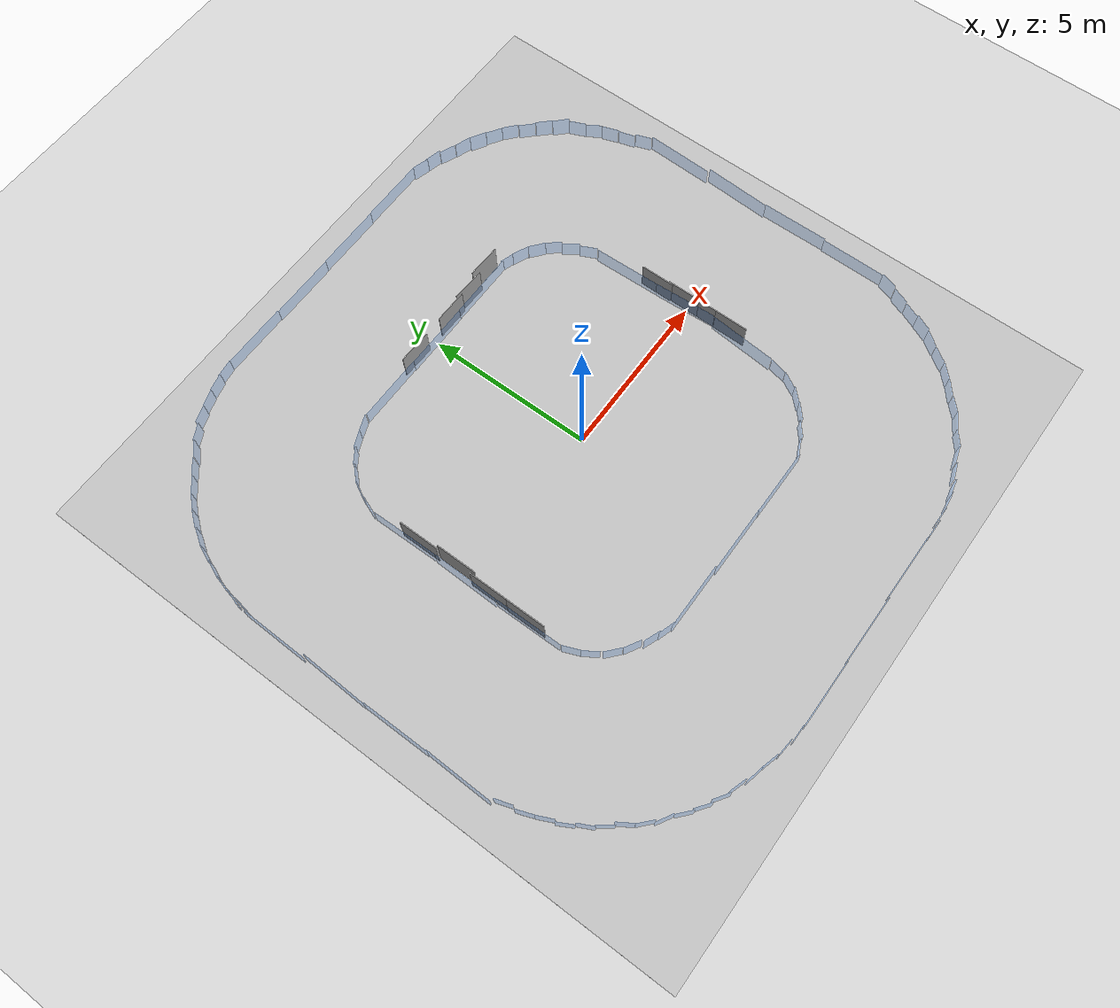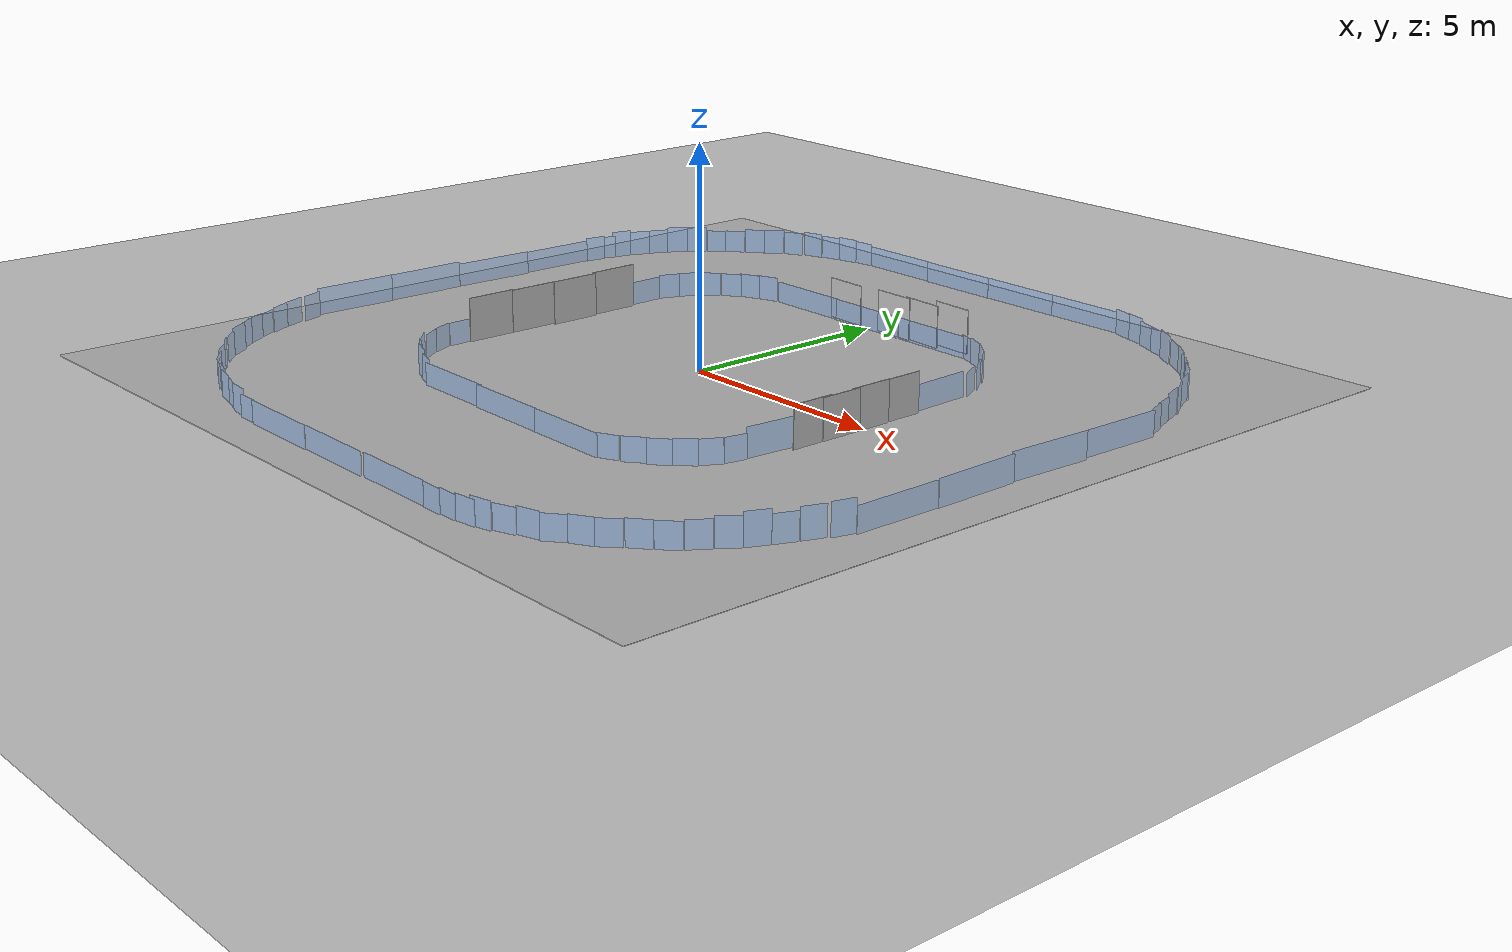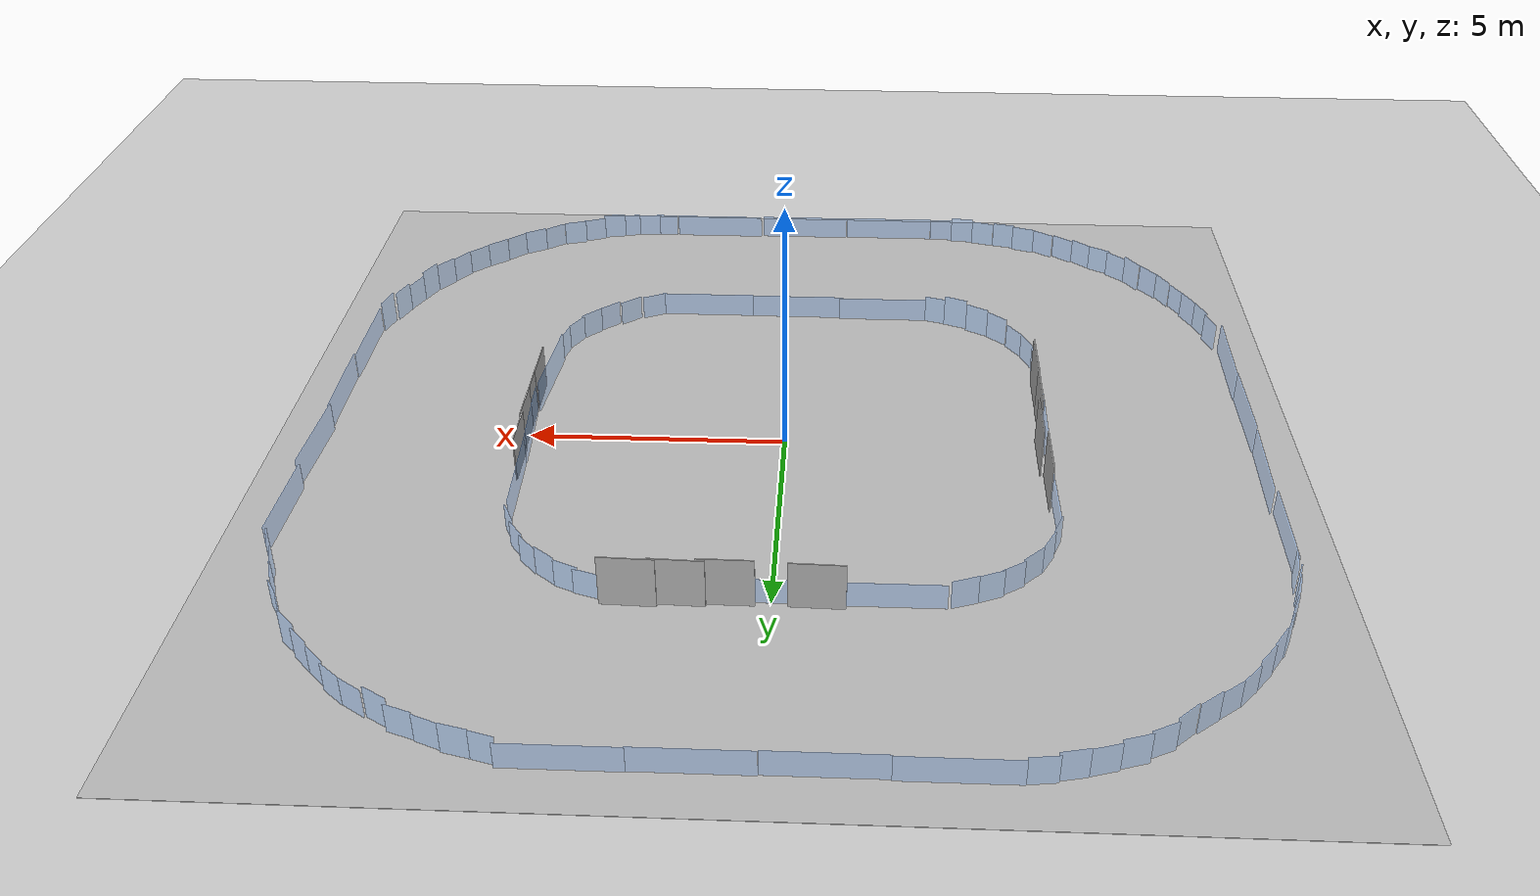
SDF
<sdf version="1.6">
 <world name="circular_track_world">
  <include><uri>model://sun</uri></include>
  <include><uri>model://ground_plane</uri></include>
  <include><uri>model://race_track</uri></include>
  <include>
   <uri>model://photo_signs/building_sign_01</uri>
   <name>building_sign_01</name>
   <pose>-4.9843 1.5463 0.2472 0.0000 0.0000 0.0000</pose>
   <static>true</static>
  </include>
  <include>
   <uri>model://photo_signs/building_sign_02</uri>
   <name>building_sign_02</name>
   <pose>-4.9121 0.3691 0.2447 0.0000 0.0000 0.0000</pose>
   <static>true</static>
  </include>
  <include>
   <uri>model://photo_signs/building_sign_03</uri>
   <name>building_sign_03</name>
   <pose>-4.9965 -0.7478 0.2243 0.0000 0.0000 0.0000</pose>
   <static>true</static>
  </include>
  <include>
   <uri>model://photo_signs/building_sign_04</uri>
   <name>building_sign_04</name>
   <pose>-5.0021 -1.9104 0.2433 0.0000 0.0000 0.0000</pose>
   <static>true</static>
  </include>
  <include>
   <uri>model://photo_signs/person_sign_02</uri>
   <name>person_sign_02</name>
   <pose>1.604 5.124 0.318 0 0 1.531</pose>
   <static>true</static>
  </include>
  <include>
   <uri>model://photo_signs/person_sign_04</uri>
   <name>person_sign_04</name>
   <pose>0.767 5.083 0.318 0 0 1.558</pose>
   <static>true</static>
  </include>
  <include>
   <uri>model://photo_signs/person_sign_05</uri>
   <name>person_sign_05</name>
   <pose>2.433 5.213 0.387 0 0 1.538</pose>
   <static>true</static>
  </include>
  <include>
   <uri>model://photo_signs/person_sign_07</uri>
   <name>person_sign_07</name>
   <pose>-0.786 5.095 0.282 0 0 1.543</pose>
   <static>true</static>
  </include>
  <include>
   <uri>model://photo_signs/trash_sign_01</uri>
   <name>trash_sign_01</name>
   <pose>5.0318 -1.4038 0.3272 0.0000 0.0000 0.0000</pose>
   <static>true</static>
  </include>
  <include>
   <uri>model://photo_signs/trash_sign_02</uri>
   <name>trash_sign_02</name>
   <pose>5.0402 -0.6364 0.3100 0.0000 0.0000 0.0000</pose>
   <static>true</static>
  </include>
  <include>
   <uri>model://photo_signs/trash_sign_03</uri>
   <name>trash_sign_03</name>
   <pose>5.0370 0.1680 0.3245 0.0000 0.0000 0.0000</pose>
   <static>true</static>
  </include>
  <include>
   <uri>model://photo_signs/trash_sign_04</uri>
   <name>trash_sign_04</name>
   <pose>5.0114 1.0454 0.3046 0.0000 0.0000 0.0000</pose>
   <static>true</static>
  </include>
  <include><uri>model://track_walls</uri><name>track_walls</name></include>
 </world>
</sdf>

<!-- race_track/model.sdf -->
<sdf version="1.6">
  <model name="race_track">
    <static>true</static>
    <link name="ground">
      <collision name="collision">
        <pose>0 0 -0.025 0 0 0</pose>
        <geometry>
          <box>
            <size>20.0 20.0 0.08</size>
          </box>
        </geometry>
      </collision>
      <visual name="visual">
        <pose>0 0 0.005 0 0 0</pose>
        <geometry>
          <box>
            <size>20.0 20.0 0.01</size>
          </box>
        </geometry>
        <material>
          <script>
            <uri>model://race_track</uri>
            <name>race_track/ground</name>
          </script>
        </material>
      </visual>
    </link>
  </model>
</sdf>

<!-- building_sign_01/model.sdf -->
<sdf version="1.6">
  <model name="building_sign_01">
    <static>true</static>
    <link name="sign">
      <visual name="visual">
        <pose>0 0 0.175 0 0 0</pose>
        <geometry>
          <box>
            <size>0.02 1.2 1.2</size>
          </box>
        </geometry>
        <material>
          <script>
            <uri>model://photo_signs/building_sign_01/materials/scripts</uri>
            <uri>model://photo_signs/building_sign_01/materials/textures</uri>
            <name>PhotoSign/building_sign_01</name>
          </script>
        </material>
      </visual>
    </link>
  </model>
</sdf>

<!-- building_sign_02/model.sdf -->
<sdf version="1.6">
  <model name="building_sign_02">
    <static>true</static>
    <link name="sign">
      <visual name="visual">
        <pose>0 0 0.175 0 0 0</pose>
        <geometry>
          <box>
            <size>0.02 1.2 1.2</size>
          </box>
        </geometry>
        <material>
          <script>
            <uri>model://photo_signs/building_sign_02/materials/scripts</uri>
            <uri>model://photo_signs/building_sign_02/materials/textures</uri>
            <name>PhotoSign/building_sign_02</name>
          </script>
        </material>
      </visual>
    </link>
  </model>
</sdf>

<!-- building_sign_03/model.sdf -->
<sdf version="1.6">
  <model name="building_sign_03">
    <static>true</static>
    <link name="sign">
      <visual name="visual">
        <pose>0 0 0.175 0 0 0</pose>
        <geometry>
          <box>
            <size>0.02 1.2 1.2</size>
          </box>
        </geometry>
        <material>
          <script>
            <uri>model://photo_signs/building_sign_03/materials/scripts</uri>
            <uri>model://photo_signs/building_sign_03/materials/textures</uri>
            <name>PhotoSign/building_sign_03</name>
          </script>
        </material>
      </visual>
    </link>
  </model>
</sdf>

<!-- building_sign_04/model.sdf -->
<sdf version="1.6">
  <model name="building_sign_04">
    <static>true</static>
    <link name="sign">
      <visual name="visual">
        <pose>0 0 0.175 0 0 0</pose>
        <geometry>
          <box>
            <size>0.02 1.2 1.2</size>
          </box>
        </geometry>
        <material>
          <script>
            <uri>model://photo_signs/building_sign_04/materials/scripts</uri>
            <uri>model://photo_signs/building_sign_04/materials/textures</uri>
            <name>PhotoSign/building_sign_04</name>
          </script>
        </material>
      </visual>
    </link>
  </model>
</sdf>

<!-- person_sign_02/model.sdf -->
<sdf version="1.6">
  <model name="person_sign_02">
    <static>true</static>
    <link name="sign">
      <visual name="visual">
        <pose>0 0 0.16 0 0 0</pose>
        <geometry>
          <box>
            <size>0.02 1.0 1.0</size>
          </box>
        </geometry>
        <material>
          <script>
            <uri>model://photo_signs/person_sign_02/materials/scripts</uri>
            <uri>model://photo_signs/person_sign_02/materials/textures</uri>
            <name>PhotoSign/person_sign_02</name>
          </script>
        </material>
      </visual>
    </link>
  </model>
</sdf>

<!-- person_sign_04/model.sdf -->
<sdf version="1.6">
  <model name="person_sign_04">
    <static>true</static>
    <link name="sign">
      <visual name="visual">
        <pose>0 0 0.16 0 0 0</pose>
        <geometry>
          <box>
            <size>0.02 1.0 1.0</size>
          </box>
        </geometry>
        <material>
          <script>
            <uri>model://photo_signs/person_sign_04/materials/scripts</uri>
            <uri>model://photo_signs/person_sign_04/materials/textures</uri>
            <name>PhotoSign/person_sign_04</name>
          </script>
        </material>
      </visual>
    </link>
  </model>
</sdf>

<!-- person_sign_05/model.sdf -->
<sdf version="1.6">
  <model name="person_sign_05">
    <static>true</static>
    <link name="sign">
      <visual name="visual">
        <pose>0 0 0.16 0 0 0</pose>
        <geometry>
          <box>
            <size>0.02 1 1</size>
          </box>
        </geometry>
        <material>
          <script>
            <uri>model://photo_signs/person_sign_05/materials/scripts</uri>
            <uri>model://photo_signs/person_sign_05/materials/textures</uri>
            <name>PhotoSign/person_sign_05</name>
          </script>
        </material>
      </visual>
    </link>
  </model>
</sdf>

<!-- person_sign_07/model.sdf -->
<sdf version="1.6">
  <model name="person_sign_07">
    <static>true</static>
    <link name="sign">
      <visual name="visual">
        <pose>0 0 0.16 0 0 0</pose>
        <geometry>
          <box>
            <size>0.02 1 1</size>
          </box>
        </geometry>
        <material>
          <script>
            <uri>model://photo_signs/person_sign_07/materials/scripts</uri>
            <uri>model://photo_signs/person_sign_07/materials/textures</uri>
            <name>PhotoSign/person_sign_07</name>
          </script>
        </material>
      </visual>
    </link>
  </model>
</sdf>

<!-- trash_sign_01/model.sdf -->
<sdf version="1.6">
  <model name="trash_sign_01">
    <static>true</static>
    <link name="sign">
      <visual name="visual">
        <pose>0 0 0.1 0 0 0</pose>
        <geometry>
          <box>
            <size>0.02 1 1</size>
          </box>
        </geometry>
        <material>
          <script>
            <uri>model://photo_signs/trash_sign_01/materials/scripts</uri>
            <uri>model://photo_signs/trash_sign_01/materials/textures</uri>
            <name>PhotoSign/trash_sign_01</name>
          </script>
        </material>
      </visual>
    </link>
  </model>
</sdf>

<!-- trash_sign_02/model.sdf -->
<sdf version="1.6">
  <model name="trash_sign_02">
    <static>true</static>
    <link name="sign">
      <visual name="visual">
        <pose>0 0 0.1 0 0 0</pose>
        <geometry>
          <box>
            <size>0.02 1 1</size>
          </box>
        </geometry>
        <material>
          <script>
            <uri>model://photo_signs/trash_sign_02/materials/scripts</uri>
            <uri>model://photo_signs/trash_sign_02/materials/textures</uri>
            <name>PhotoSign/trash_sign_02</name>
          </script>
        </material>
      </visual>
    </link>
  </model>
</sdf>

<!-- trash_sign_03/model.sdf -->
<sdf version="1.6">
  <model name="trash_sign_03">
    <static>true</static>
    <link name="sign">
      <visual name="visual">
        <pose>0 0 0.1 0 0 0</pose>
        <geometry>
          <box>
            <size>0.02 1 1</size>
          </box>
        </geometry>
        <material>
          <script>
            <uri>model://photo_signs/trash_sign_03/materials/scripts</uri>
            <uri>model://photo_signs/trash_sign_03/materials/textures</uri>
            <name>PhotoSign/trash_sign_03</name>
          </script>
        </material>
      </visual>
    </link>
  </model>
</sdf>

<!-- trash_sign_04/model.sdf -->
<sdf version="1.6">
  <model name="trash_sign_04">
    <static>true</static>
    <link name="sign">
      <visual name="visual">
        <pose>0 0 0.1 0 0 0</pose>
        <geometry>
          <box>
            <size>0.02 1 1</size>
          </box>
        </geometry>
        <material>
          <script>
            <uri>model://photo_signs/trash_sign_04/materials/scripts</uri>
            <uri>model://photo_signs/trash_sign_04/materials/textures</uri>
            <name>PhotoSign/trash_sign_04</name>
          </script>
        </material>
      </visual>
    </link>
  </model>
</sdf>
